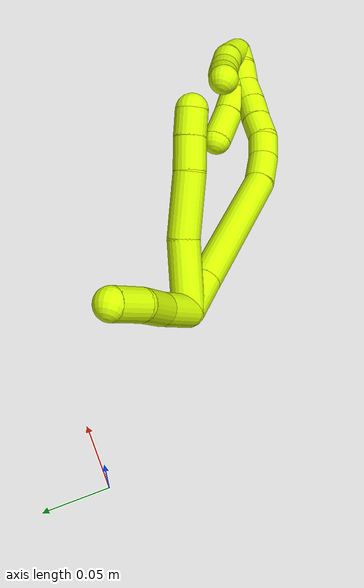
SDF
<sdf version="1.7">
 <world name="default">
  <model name="photoneo_s_sensor">
   <static>1</static>
   <pose>0 0 2 1.57079 1.57079 3.14159</pose>
   <link name="link">
    <inertial><mass>0.1</mass></inertial>
    <sensor name="sensor" type="depth">
     <update_rate>30</update_rate>
     <camera>
      <horizontal_fov>1.22</horizontal_fov>
      <image><width>1920</width><height>1200</height><format>B8G8R8</format></image>
      <clip><near>0.1</near><far>4</far></clip>
      <depth_camera><output>points</output></depth_camera>
     </camera>
     <plugin name="camera_plugin" filename="libgazebo_ros_depth_camera.so">
      <baseline>0.2</baseline>
      <alwaysOn>1</alwaysOn>
      <updateRate>0.0</updateRate>
      <cameraName>camera_ir</cameraName>
      <imageTopicName>/camera/color/image_raw</imageTopicName>
      <cameraInfoTopicName>/camera/color/camera_info</cameraInfoTopicName>
      <depthImageTopicName>/camera/depth/image_raw</depthImageTopicName>
      <depthImageCameraInfoTopicName>/camera/depth/camera_info</depthImageCameraInfoTopicName>
      <pointCloudTopicName>/camera/depth/points</pointCloudTopicName>
      <frameName>fr_optical</frameName>
      <pointCloudCutoff>0.1</pointCloudCutoff>
      <pointCloudCutoffMax>2.0</pointCloudCutoffMax>
      <distortionK1>0</distortionK1>
      <distortionK2>0</distortionK2>
      <distortionK3>0</distortionK3>
      <distortionT1>0</distortionT1>
      <distortionT2>0</distortionT2>
      <CxPrime>0</CxPrime>
      <Cx>0</Cx>
      <Cy>0</Cy>
      <focalLength>0</focalLength>
      <hackBaseline>0</hackBaseline>
     </plugin>
    </sensor>
   </link>
  </model>
  <model name="bin">
   <static>1</static>
   <link name="bottom">
    <collision name="collision-bottom">
     <pose>0 0 -0.01 0 -0 0</pose>
     <geometry><box><size>0.8 0.6 0.02</size></box></geometry>
     <surface>
      <friction><ode><mu>100</mu><mu2>100</mu2></ode></friction>
      <contact><collide_bitmask>65535</collide_bitmask></contact>
     </surface>
    </collision>
   </link>
   <link name="west_wall">
    <collision name="collision-west_wall">
     <pose>-0.41 0 0.1 0 -0 0</pose>
     <geometry><box><size>0.02 0.6 0.2</size></box></geometry>
     <surface>
      <friction><ode><mu>100</mu><mu2>100</mu2></ode></friction>
      <contact><collide_bitmask>65535</collide_bitmask></contact>
     </surface>
    </collision>
   </link>
   <link name="east_wall">
    <collision name="collision-east_wall">
     <pose>0.41 0 0.1 0 -0 0</pose>
     <geometry><box><size>0.02 0.6 0.2</size></box></geometry>
     <surface>
      <friction><ode><mu>100</mu><mu2>100</mu2></ode></friction>
      <contact><collide_bitmask>65535</collide_bitmask></contact>
     </surface>
    </collision>
   </link>
   <link name="south_wall">
    <collision name="collision-south_wall">
     <pose>0 -0.31 0.1 0 -0 0</pose>
     <geometry><box><size>0.8 0.02 0.2</size></box></geometry>
     <surface>
      <friction><ode><mu>100</mu><mu2>100</mu2></ode></friction>
      <contact><collide_bitmask>65535</collide_bitmask></contact>
     </surface>
    </collision>
   </link>
   <link name="north_wall">
    <collision name="collision-north_wall">
     <pose>0 0.31 0.1 0 -0 0</pose>
     <geometry><box><size>0.8 0.02 0.2</size></box></geometry>
     <surface>
      <friction><ode><mu>100</mu><mu2>100</mu2></ode></friction>
      <contact><collide_bitmask>65535</collide_bitmask></contact>
     </surface>
    </collision>
   </link>
  </model>
  <model name="15">
   <static>0</static>
   <link name="15">
    <collision name="collision-cylinder-e_1_2_8">
     <pose>-0.008241 0.010991 0.022866 -0.448081 -0.314086 0.072132</pose>
     <geometry><cylinder><radius>0.0125</radius><length>0.053351</length></cylinder></geometry>
     <surface>
      <friction><ode><mu>1.16</mu><mu2>1.16</mu2><slip1>0</slip1><slip2>0</slip2></ode></friction>
      <contact><ode><kp>1e+06</kp><kd>1</kd><max_vel>0</max_vel><min_depth>0.001</min_depth></ode></contact>
     </surface>
    </collision>
    <visual name="visual-cylinder-e_1_2_8">
     <pose>-0.008241 0.010991 0.022866 -0.448081 -0.314086 0.072132</pose>
     <geometry><cylinder><radius>0.0125</radius><length>0.053351</length></cylinder></geometry>
     <material><ambient>0.835294 1 0 1</ambient></material>
    </visual>
    <collision name="collision-cylinder-e_2_8_9">
     <pose>-0.026386 0.028976 0.067636 -0.309021 -0.406699 0.06421</pose>
     <geometry><cylinder><radius>0.0125</radius><length>0.050071</length></cylinder></geometry>
     <surface>
      <friction><ode><mu>1.16</mu><mu2>1.16</mu2><slip1>0</slip1><slip2>0</slip2></ode></friction>
      <contact><ode><kp>1e+06</kp><kd>1</kd><max_vel>0</max_vel><min_depth>0.001</min_depth></ode></contact>
     </surface>
    </collision>
    <visual name="visual-cylinder-e_2_8_9">
     <pose>-0.026386 0.028976 0.067636 -0.309021 -0.406699 0.06421</pose>
     <geometry><cylinder><radius>0.0125</radius><length>0.050071</length></cylinder></geometry>
     <material><ambient>0.835294 1 0 1</ambient></material>
    </visual>
    <collision name="collision-cylinder-e_3_9_10">
     <pose>-0.039952 0.040255 0.10112 -0.354496 -0.28836 0.052003</pose>
     <geometry><cylinder><radius>0.0125</radius><length>0.02576</length></cylinder></geometry>
     <surface>
      <friction><ode><mu>1.16</mu><mu2>1.16</mu2><slip1>0</slip1><slip2>0</slip2></ode></friction>
      <contact><ode><kp>1e+06</kp><kd>1</kd><max_vel>0</max_vel><min_depth>0.001</min_depth></ode></contact>
     </surface>
    </collision>
    <visual name="visual-cylinder-e_3_9_10">
     <pose>-0.039952 0.040255 0.10112 -0.354496 -0.28836 0.052003</pose>
     <geometry><cylinder><radius>0.0125</radius><length>0.02576</length></cylinder></geometry>
     <material><ambient>0.835294 1 0 1</ambient></material>
    </visual>
    <collision name="collision-cylinder-e_4_10_6">
     <pose>-0.046738 0.047429 0.122201 -0.295063 -0.304682 0.045625</pose>
     <geometry><cylinder><radius>0.0125</radius><length>0.020819</length></cylinder></geometry>
     <surface>
      <friction><ode><mu>1.16</mu><mu2>1.16</mu2><slip1>0</slip1><slip2>0</slip2></ode></friction>
      <contact><ode><kp>1e+06</kp><kd>1</kd><max_vel>0</max_vel><min_depth>0.001</min_depth></ode></contact>
     </surface>
    </collision>
    <visual name="visual-cylinder-e_4_10_6">
     <pose>-0.046738 0.047429 0.122201 -0.295063 -0.304682 0.045625</pose>
     <geometry><cylinder><radius>0.0125</radius><length>0.020819</length></cylinder></geometry>
     <material><ambient>0.835294 1 0 1</ambient></material>
    </visual>
    <collision name="collision-cylinder-e_1_2_11">
     <pose>-0.010349 0.012604 -0.007234 -2.09183 -0.618815 1.00884</pose>
     <geometry><cylinder><radius>0.0125</radius><length>0.035681</length></cylinder></geometry>
     <surface>
      <friction><ode><mu>1.16</mu><mu2>1.16</mu2><slip1>0</slip1><slip2>0</slip2></ode></friction>
      <contact><ode><kp>1e+06</kp><kd>1</kd><max_vel>0</max_vel><min_depth>0.001</min_depth></ode></contact>
     </surface>
    </collision>
    <visual name="visual-cylinder-e_1_2_11">
     <pose>-0.010349 0.012604 -0.007234 -2.09183 -0.618815 1.00884</pose>
     <geometry><cylinder><radius>0.0125</radius><length>0.035681</length></cylinder></geometry>
     <material><ambient>0.835294 1 0 1</ambient></material>
    </visual>
    <collision name="collision-cylinder-e_2_11_12">
     <pose>-0.033357 0.035543 -0.020715 -2.11451 -0.808969 1.29847</pose>
     <geometry><cylinder><radius>0.0125</radius><length>0.034991</length></cylinder></geometry>
     <surface>
      <friction><ode><mu>1.16</mu><mu2>1.16</mu2><slip1>0</slip1><slip2>0</slip2></ode></friction>
      <contact><ode><kp>1e+06</kp><kd>1</kd><max_vel>0</max_vel><min_depth>0.001</min_depth></ode></contact>
     </surface>
    </collision>
    <visual name="visual-cylinder-e_2_11_12">
     <pose>-0.033357 0.035543 -0.020715 -2.11451 -0.808969 1.29847</pose>
     <geometry><cylinder><radius>0.0125</radius><length>0.034991</length></cylinder></geometry>
     <material><ambient>0.835294 1 0 1</ambient></material>
    </visual>
    <collision name="collision-cylinder-e_3_12_5">
     <pose>-0.052771 0.05735 -0.03311 -2.06272 -0.478718 0.774144</pose>
     <geometry><cylinder><radius>0.0125</radius><length>0.029328</length></cylinder></geometry>
     <surface>
      <friction><ode><mu>1.16</mu><mu2>1.16</mu2><slip1>0</slip1><slip2>0</slip2></ode></friction>
      <contact><ode><kp>1e+06</kp><kd>1</kd><max_vel>0</max_vel><min_depth>0.001</min_depth></ode></contact>
     </surface>
    </collision>
    <visual name="visual-cylinder-e_3_12_5">
     <pose>-0.052771 0.05735 -0.03311 -2.06272 -0.478718 0.774144</pose>
     <geometry><cylinder><radius>0.0125</radius><length>0.029328</length></cylinder></geometry>
     <material><ambient>0.835294 1 0 1</ambient></material>
    </visual>
    <collision name="collision-cylinder-e_1_2_13">
     <pose>0.00358 -0.004293 0.015529 0.269724 0.218636 0.029782</pose>
     <geometry><cylinder><radius>0.0125</radius><length>0.033009</length></cylinder></geometry>
     <surface>
      <friction><ode><mu>1.16</mu><mu2>1.16</mu2><slip1>0</slip1><slip2>0</slip2></ode></friction>
      <contact><ode><kp>1e+06</kp><kd>1</kd><max_vel>0</max_vel><min_depth>0.001</min_depth></ode></contact>
     </surface>
    </collision>
    <visual name="visual-cylinder-e_1_2_13">
     <pose>0.00358 -0.004293 0.015529 0.269724 0.218636 0.029782</pose>
     <geometry><cylinder><radius>0.0125</radius><length>0.033009</length></cylinder></geometry>
     <material><ambient>0.835294 1 0 1</ambient></material>
    </visual>
    <collision name="collision-cylinder-e_2_13_14">
     <pose>0.018594 -0.024327 0.087195 0.273373 0.193662 0.026719</pose>
     <geometry><cylinder><radius>0.0125</radius><length>0.118824</length></cylinder></geometry>
     <surface>
      <friction><ode><mu>1.16</mu><mu2>1.16</mu2><slip1>0</slip1><slip2>0</slip2></ode></friction>
      <contact><ode><kp>1e+06</kp><kd>1</kd><max_vel>0</max_vel><min_depth>0.001</min_depth></ode></contact>
     </surface>
    </collision>
    <visual name="visual-cylinder-e_2_13_14">
     <pose>0.018594 -0.024327 0.087195 0.273373 0.193662 0.026719</pose>
     <geometry><cylinder><radius>0.0125</radius><length>0.118824</length></cylinder></geometry>
     <material><ambient>0.835294 1 0 1</ambient></material>
    </visual>
    <collision name="collision-cylinder-e_3_14_15">
     <pose>0.032879 -0.040221 0.157082 0.01122 0.204436 0.001151</pose>
     <geometry><cylinder><radius>0.0125</radius><length>0.028089</length></cylinder></geometry>
     <surface>
      <friction><ode><mu>1.16</mu><mu2>1.16</mu2><slip1>0</slip1><slip2>0</slip2></ode></friction>
      <contact><ode><kp>1e+06</kp><kd>1</kd><max_vel>0</max_vel><min_depth>0.001</min_depth></ode></contact>
     </surface>
    </collision>
    <visual name="visual-cylinder-e_3_14_15">
     <pose>0.032879 -0.040221 0.157082 0.01122 0.204436 0.001151</pose>
     <geometry><cylinder><radius>0.0125</radius><length>0.028089</length></cylinder></geometry>
     <material><ambient>0.835294 1 0 1</ambient></material>
    </visual>
    <collision name="collision-cylinder-e_4_15_16">
     <pose>0.035614 -0.038026 0.180584 -0.236492 -0.011624 0.001381</pose>
     <geometry><cylinder><radius>0.0125</radius><length>0.020061</length></cylinder></geometry>
     <surface>
      <friction><ode><mu>1.16</mu><mu2>1.16</mu2><slip1>0</slip1><slip2>0</slip2></ode></friction>
      <contact><ode><kp>1e+06</kp><kd>1</kd><max_vel>0</max_vel><min_depth>0.001</min_depth></ode></contact>
     </surface>
    </collision>
    <visual name="visual-cylinder-e_4_15_16">
     <pose>0.035614 -0.038026 0.180584 -0.236492 -0.011624 0.001381</pose>
     <geometry><cylinder><radius>0.0125</radius><length>0.020061</length></cylinder></geometry>
     <material><ambient>0.835294 1 0 1</ambient></material>
    </visual>
    <collision name="collision-cylinder-e_5_16_17">
     <pose>0.037914 -0.031515 0.199102 -0.443098 0.244116 -0.055247</pose>
     <geometry><cylinder><radius>0.0125</radius><length>0.020002</length></cylinder></geometry>
     <surface>
      <friction><ode><mu>1.16</mu><mu2>1.16</mu2><slip1>0</slip1><slip2>0</slip2></ode></friction>
      <contact><ode><kp>1e+06</kp><kd>1</kd><max_vel>0</max_vel><min_depth>0.001</min_depth></ode></contact>
     </surface>
    </collision>
    <visual name="visual-cylinder-e_5_16_17">
     <pose>0.037914 -0.031515 0.199102 -0.443098 0.244116 -0.055247</pose>
     <geometry><cylinder><radius>0.0125</radius><length>0.020002</length></cylinder></geometry>
     <material><ambient>0.835294 1 0 1</ambient></material>
    </visual>
    <collision name="collision-cylinder-e_6_17_18">
     <pose>0.042967 -0.023987 0.216916 -0.356314 0.26648 -0.048261</pose>
     <geometry><cylinder><radius>0.0125</radius><length>0.020011</length></cylinder></geometry>
     <surface>
      <friction><ode><mu>1.16</mu><mu2>1.16</mu2><slip1>0</slip1><slip2>0</slip2></ode></friction>
      <contact><ode><kp>1e+06</kp><kd>1</kd><max_vel>0</max_vel><min_depth>0.001</min_depth></ode></contact>
     </surface>
    </collision>
    <visual name="visual-cylinder-e_6_17_18">
     <pose>0.042967 -0.023987 0.216916 -0.356314 0.26648 -0.048261</pose>
     <geometry><cylinder><radius>0.0125</radius><length>0.020011</length></cylinder></geometry>
     <material><ambient>0.835294 1 0 1</ambient></material>
    </visual>
    <collision name="collision-cylinder-e_7_18_19">
     <pose>0.047708 -0.016164 0.234665 -0.473233 0.212214 -0.051354</pose>
     <geometry><cylinder><radius>0.0125</radius><length>0.020003</length></cylinder></geometry>
     <surface>
      <friction><ode><mu>1.16</mu><mu2>1.16</mu2><slip1>0</slip1><slip2>0</slip2></ode></friction>
      <contact><ode><kp>1e+06</kp><kd>1</kd><max_vel>0</max_vel><min_depth>0.001</min_depth></ode></contact>
     </surface>
    </collision>
    <visual name="visual-cylinder-e_7_18_19">
     <pose>0.047708 -0.016164 0.234665 -0.473233 0.212214 -0.051354</pose>
     <geometry><cylinder><radius>0.0125</radius><length>0.020003</length></cylinder></geometry>
     <material><ambient>0.835294 1 0 1</ambient></material>
    </visual>
    <collision name="collision-cylinder-e_8_19_20">
     <pose>0.050715 -0.00834 0.25274 -0.344959 0.0902 -0.015724</pose>
     <geometry><cylinder><radius>0.0125</radius><length>0.02</length></cylinder></geometry>
     <surface>
      <friction><ode><mu>1.16</mu><mu2>1.16</mu2><slip1>0</slip1><slip2>0</slip2></ode></friction>
      <contact><ode><kp>1e+06</kp><kd>1</kd><max_vel>0</max_vel><min_depth>0.001</min_depth></ode></contact>
     </surface>
    </collision>
    <visual name="visual-cylinder-e_8_19_20">
     <pose>0.050715 -0.00834 0.25274 -0.344959 0.0902 -0.015724</pose>
     <geometry><cylinder><radius>0.0125</radius><length>0.02</length></cylinder></geometry>
     <material><ambient>0.835294 1 0 1</ambient></material>
    </visual>
    <collision name="collision-cylinder-e_9_20_1">
     <pose>0.054775 -0.00208 0.271149 -0.309818 0.321417 -0.050618</pose>
     <geometry><cylinder><radius>0.0125</radius><length>0.02</length></cylinder></geometry>
     <surface>
      <friction><ode><mu>1.16</mu><mu2>1.16</mu2><slip1>0</slip1><slip2>0</slip2></ode></friction>
      <contact><ode><kp>1e+06</kp><kd>1</kd><max_vel>0</max_vel><min_depth>0.001</min_depth></ode></contact>
     </surface>
    </collision>
    <visual name="visual-cylinder-e_9_20_1">
     <pose>0.054775 -0.00208 0.271149 -0.309818 0.321417 -0.050618</pose>
     <geometry><cylinder><radius>0.0125</radius><length>0.02</length></cylinder></geometry>
     <material><ambient>0.835294 1 0 1</ambient></material>
    </visual>
    <collision name="collision-cylinder-e_1_1_21">
     <pose>0.047867 0.006877 0.267368 -2.6997 -0.617441 1.91438</pose>
     <geometry><cylinder><radius>0.0125</radius><length>0.034779</length></cylinder></geometry>
     <surface>
      <friction><ode><mu>1.16</mu><mu2>1.16</mu2><slip1>0</slip1><slip2>0</slip2></ode></friction>
      <contact><ode><kp>1e+06</kp><kd>1</kd><max_vel>0</max_vel><min_depth>0.001</min_depth></ode></contact>
     </surface>
    </collision>
    <visual name="visual-cylinder-e_1_1_21">
     <pose>0.047867 0.006877 0.267368 -2.6997 -0.617441 1.91438</pose>
     <geometry><cylinder><radius>0.0125</radius><length>0.034779</length></cylinder></geometry>
     <material><ambient>0.835294 1 0 1</ambient></material>
    </visual>
    <collision name="collision-cylinder-e_2_21_22">
     <pose>0.033075 0.014241 0.245579 -2.99767 -0.480328 2.56903</pose>
     <geometry><cylinder><radius>0.0125</radius><length>0.020447</length></cylinder></geometry>
     <surface>
      <friction><ode><mu>1.16</mu><mu2>1.16</mu2><slip1>0</slip1><slip2>0</slip2></ode></friction>
      <contact><ode><kp>1e+06</kp><kd>1</kd><max_vel>0</max_vel><min_depth>0.001</min_depth></ode></contact>
     </surface>
    </collision>
    <visual name="visual-cylinder-e_2_21_22">
     <pose>0.033075 0.014241 0.245579 -2.99767 -0.480328 2.56903</pose>
     <geometry><cylinder><radius>0.0125</radius><length>0.020447</length></cylinder></geometry>
     <material><ambient>0.835294 1 0 1</ambient></material>
    </visual>
    <collision name="collision-cylinder-e_3_22_23">
     <pose>0.021314 0.017144 0.227975 -2.95791 -0.675731 2.62885</pose>
     <geometry><cylinder><radius>0.0125</radius><length>0.0225</length></cylinder></geometry>
     <surface>
      <friction><ode><mu>1.16</mu><mu2>1.16</mu2><slip1>0</slip1><slip2>0</slip2></ode></friction>
      <contact><ode><kp>1e+06</kp><kd>1</kd><max_vel>0</max_vel><min_depth>0.001</min_depth></ode></contact>
     </surface>
    </collision>
    <visual name="visual-cylinder-e_3_22_23">
     <pose>0.021314 0.017144 0.227975 -2.95791 -0.675731 2.62885</pose>
     <geometry><cylinder><radius>0.0125</radius><length>0.0225</length></cylinder></geometry>
     <material><ambient>0.835294 1 0 1</ambient></material>
    </visual>
    <collision name="collision-cylinder-e_4_23_4">
     <pose>0.006509 0.019769 0.211431 -3.01331 -0.772057 2.82811</pose>
     <geometry><cylinder><radius>0.0125</radius><length>0.022273</length></cylinder></geometry>
     <surface>
      <friction><ode><mu>1.16</mu><mu2>1.16</mu2><slip1>0</slip1><slip2>0</slip2></ode></friction>
      <contact><ode><kp>1e+06</kp><kd>1</kd><max_vel>0</max_vel><min_depth>0.001</min_depth></ode></contact>
     </surface>
    </collision>
    <visual name="visual-cylinder-e_4_23_4">
     <pose>0.006509 0.019769 0.211431 -3.01331 -0.772057 2.82811</pose>
     <geometry><cylinder><radius>0.0125</radius><length>0.022273</length></cylinder></geometry>
     <material><ambient>0.835294 1 0 1</ambient></material>
    </visual>
    <collision name="collision-cylinder-e_1_1_24">
     <pose>0.056847 -0.000971 0.270323 2.96262 -0.108044 -1.08474</pose>
     <geometry><cylinder><radius>0.0125</radius><length>0.020162</length></cylinder></geometry>
     <surface>
      <friction><ode><mu>1.16</mu><mu2>1.16</mu2><slip1>0</slip1><slip2>0</slip2></ode></friction>
      <contact><ode><kp>1e+06</kp><kd>1</kd><max_vel>0</max_vel><min_depth>0.001</min_depth></ode></contact>
     </surface>
    </collision>
    <visual name="visual-cylinder-e_1_1_24">
     <pose>0.056847 -0.000971 0.270323 2.96262 -0.108044 -1.08474</pose>
     <geometry><cylinder><radius>0.0125</radius><length>0.020162</length></cylinder></geometry>
     <material><ambient>0.835294 1 0 1</ambient></material>
    </visual>
    <collision name="collision-cylinder-e_2_24_25">
     <pose>0.054119 -0.004246 0.247369 3.02824 -0.123916 -1.66</pose>
     <geometry><cylinder><radius>0.0125</radius><length>0.026556</length></cylinder></geometry>
     <surface>
      <friction><ode><mu>1.16</mu><mu2>1.16</mu2><slip1>0</slip1><slip2>0</slip2></ode></friction>
      <contact><ode><kp>1e+06</kp><kd>1</kd><max_vel>0</max_vel><min_depth>0.001</min_depth></ode></contact>
     </surface>
    </collision>
    <visual name="visual-cylinder-e_2_24_25">
     <pose>0.054119 -0.004246 0.247369 3.02824 -0.123916 -1.66</pose>
     <geometry><cylinder><radius>0.0125</radius><length>0.026556</length></cylinder></geometry>
     <material><ambient>0.835294 1 0 1</ambient></material>
    </visual>
    <collision name="collision-cylinder-e_3_25_26">
     <pose>0.052556 -0.005129 0.222562 -3.08985 0.006643 -0.255312</pose>
     <geometry><cylinder><radius>0.0125</radius><length>0.023463</length></cylinder></geometry>
     <surface>
      <friction><ode><mu>1.16</mu><mu2>1.16</mu2><slip1>0</slip1><slip2>0</slip2></ode></friction>
      <contact><ode><kp>1e+06</kp><kd>1</kd><max_vel>0</max_vel><min_depth>0.001</min_depth></ode></contact>
     </surface>
    </collision>
    <visual name="visual-cylinder-e_3_25_26">
     <pose>0.052556 -0.005129 0.222562 -3.08985 0.006643 -0.255312</pose>
     <geometry><cylinder><radius>0.0125</radius><length>0.023463</length></cylinder></geometry>
     <material><ambient>0.835294 1 0 1</ambient></material>
    </visual>
    <collision name="collision-cylinder-e_4_26_3">
     <pose>0.052916 -0.002743 0.196046 -3.02193 0.018937 -0.31354</pose>
     <geometry><cylinder><radius>0.0125</radius><length>0.029819</length></cylinder></geometry>
     <surface>
      <friction><ode><mu>1.16</mu><mu2>1.16</mu2><slip1>0</slip1><slip2>0</slip2></ode></friction>
      <contact><ode><kp>1e+06</kp><kd>1</kd><max_vel>0</max_vel><min_depth>0.001</min_depth></ode></contact>
     </surface>
    </collision>
    <visual name="visual-cylinder-e_4_26_3">
     <pose>0.052916 -0.002743 0.196046 -3.02193 0.018937 -0.31354</pose>
     <geometry><cylinder><radius>0.0125</radius><length>0.029819</length></cylinder></geometry>
     <material><ambient>0.835294 1 0 1</ambient></material>
    </visual>
    <collision name="collision-sphere-3">
     <pose>0.053198 -0.000963 0.181246 0 -0 0</pose>
     <geometry><sphere><radius>0.0125</radius></sphere></geometry>
     <surface>
      <friction><ode><mu>1.16</mu><mu2>1.16</mu2><slip1>0</slip1><slip2>0</slip2></ode></friction>
      <contact><ode><kp>1e+06</kp><kd>1</kd><max_vel>0</max_vel><min_depth>0.001</min_depth></ode></contact>
     </surface>
    </collision>
    <visual name="visual-sphere-3">
     <pose>0.053198 -0.000963 0.181246 0 -0 0</pose>
     <geometry><sphere><radius>0.0125</radius></sphere></geometry>
     <material><ambient>0.835294 1 0 1</ambient></material>
    </visual>
    <collision name="collision-sphere-26">
     <pose>0.052634 -0.004522 0.210846 0 -0 0</pose>
     <geometry><sphere><radius>0.0125</radius></sphere></geometry>
     <surface>
      <friction><ode><mu>1.16</mu><mu2>1.16</mu2><slip1>0</slip1><slip2>0</slip2></ode></friction>
      <contact><ode><kp>1e+06</kp><kd>1</kd><max_vel>0</max_vel><min_depth>0.001</min_depth></ode></contact>
     </surface>
    </collision>
    <visual name="visual-sphere-26">
     <pose>0.052634 -0.004522 0.210846 0 -0 0</pose>
     <geometry><sphere><radius>0.0125</radius></sphere></geometry>
     <material><ambient>0.835294 1 0 1</ambient></material>
    </visual>
    <collision name="collision-sphere-25">
     <pose>0.052478 -0.005736 0.234278 0 -0 0</pose>
     <geometry><sphere><radius>0.0125</radius></sphere></geometry>
     <surface>
      <friction><ode><mu>1.16</mu><mu2>1.16</mu2><slip1>0</slip1><slip2>0</slip2></ode></friction>
      <contact><ode><kp>1e+06</kp><kd>1</kd><max_vel>0</max_vel><min_depth>0.001</min_depth></ode></contact>
     </surface>
    </collision>
    <visual name="visual-sphere-25">
     <pose>0.052478 -0.005736 0.234278 0 -0 0</pose>
     <geometry><sphere><radius>0.0125</radius></sphere></geometry>
     <material><ambient>0.835294 1 0 1</ambient></material>
    </visual>
    <collision name="collision-sphere-24">
     <pose>0.05576 -0.002755 0.260461 0 -0 0</pose>
     <geometry><sphere><radius>0.0125</radius></sphere></geometry>
     <surface>
      <friction><ode><mu>1.16</mu><mu2>1.16</mu2><slip1>0</slip1><slip2>0</slip2></ode></friction>
      <contact><ode><kp>1e+06</kp><kd>1</kd><max_vel>0</max_vel><min_depth>0.001</min_depth></ode></contact>
     </surface>
    </collision>
    <visual name="visual-sphere-24">
     <pose>0.05576 -0.002755 0.260461 0 -0 0</pose>
     <geometry><sphere><radius>0.0125</radius></sphere></geometry>
     <material><ambient>0.835294 1 0 1</ambient></material>
    </visual>
    <collision name="collision-sphere-4">
     <pose>-0.001261 0.020789 0.203518 0 -0 0</pose>
     <geometry><sphere><radius>0.0125</radius></sphere></geometry>
     <surface>
      <friction><ode><mu>1.16</mu><mu2>1.16</mu2><slip1>0</slip1><slip2>0</slip2></ode></friction>
      <contact><ode><kp>1e+06</kp><kd>1</kd><max_vel>0</max_vel><min_depth>0.001</min_depth></ode></contact>
     </surface>
    </collision>
    <visual name="visual-sphere-4">
     <pose>-0.001261 0.020789 0.203518 0 -0 0</pose>
     <geometry><sphere><radius>0.0125</radius></sphere></geometry>
     <material><ambient>0.835294 1 0 1</ambient></material>
    </visual>
    <collision name="collision-sphere-23">
     <pose>0.014278 0.018748 0.219345 0 -0 0</pose>
     <geometry><sphere><radius>0.0125</radius></sphere></geometry>
     <surface>
      <friction><ode><mu>1.16</mu><mu2>1.16</mu2><slip1>0</slip1><slip2>0</slip2></ode></friction>
      <contact><ode><kp>1e+06</kp><kd>1</kd><max_vel>0</max_vel><min_depth>0.001</min_depth></ode></contact>
     </surface>
    </collision>
    <visual name="visual-sphere-23">
     <pose>0.014278 0.018748 0.219345 0 -0 0</pose>
     <geometry><sphere><radius>0.0125</radius></sphere></geometry>
     <material><ambient>0.835294 1 0 1</ambient></material>
    </visual>
    <collision name="collision-sphere-22">
     <pose>0.028351 0.015541 0.236606 0 -0 0</pose>
     <geometry><sphere><radius>0.0125</radius></sphere></geometry>
     <surface>
      <friction><ode><mu>1.16</mu><mu2>1.16</mu2><slip1>0</slip1><slip2>0</slip2></ode></friction>
      <contact><ode><kp>1e+06</kp><kd>1</kd><max_vel>0</max_vel><min_depth>0.001</min_depth></ode></contact>
     </surface>
    </collision>
    <visual name="visual-sphere-22">
     <pose>0.028351 0.015541 0.236606 0 -0 0</pose>
     <geometry><sphere><radius>0.0125</radius></sphere></geometry>
     <material><ambient>0.835294 1 0 1</ambient></material>
    </visual>
    <collision name="collision-sphere-21">
     <pose>0.037799 0.01294 0.254551 0 -0 0</pose>
     <geometry><sphere><radius>0.0125</radius></sphere></geometry>
     <surface>
      <friction><ode><mu>1.16</mu><mu2>1.16</mu2><slip1>0</slip1><slip2>0</slip2></ode></friction>
      <contact><ode><kp>1e+06</kp><kd>1</kd><max_vel>0</max_vel><min_depth>0.001</min_depth></ode></contact>
     </surface>
    </collision>
    <visual name="visual-sphere-21">
     <pose>0.037799 0.01294 0.254551 0 -0 0</pose>
     <geometry><sphere><radius>0.0125</radius></sphere></geometry>
     <material><ambient>0.835294 1 0 1</ambient></material>
    </visual>
    <collision name="collision-sphere-1">
     <pose>0.057934 0.000813 0.280185 0 -0 0</pose>
     <geometry><sphere><radius>0.0125</radius></sphere></geometry>
     <surface>
      <friction><ode><mu>1.16</mu><mu2>1.16</mu2><slip1>0</slip1><slip2>0</slip2></ode></friction>
      <contact><ode><kp>1e+06</kp><kd>1</kd><max_vel>0</max_vel><min_depth>0.001</min_depth></ode></contact>
     </surface>
    </collision>
    <visual name="visual-sphere-1">
     <pose>0.057934 0.000813 0.280185 0 -0 0</pose>
     <geometry><sphere><radius>0.0125</radius></sphere></geometry>
     <material><ambient>0.835294 1 0 1</ambient></material>
    </visual>
    <collision name="collision-sphere-11">
     <pose>-0.020698 0.025208 -0.014468 0 -0 0</pose>
     <geometry><sphere><radius>0.0125</radius></sphere></geometry>
     <surface>
      <friction><ode><mu>1.16</mu><mu2>1.16</mu2><slip1>0</slip1><slip2>0</slip2></ode></friction>
      <contact><ode><kp>1e+06</kp><kd>1</kd><max_vel>0</max_vel><min_depth>0.001</min_depth></ode></contact>
     </surface>
    </collision>
    <visual name="visual-sphere-11">
     <pose>-0.020698 0.025208 -0.014468 0 -0 0</pose>
     <geometry><sphere><radius>0.0125</radius></sphere></geometry>
     <material><ambient>0.835294 1 0 1</ambient></material>
    </visual>
    <collision name="collision-sphere-6">
     <pose>-0.049861 0.050316 0.131702 0 -0 0</pose>
     <geometry><sphere><radius>0.0125</radius></sphere></geometry>
     <surface>
      <friction><ode><mu>1.16</mu><mu2>1.16</mu2><slip1>0</slip1><slip2>0</slip2></ode></friction>
      <contact><ode><kp>1e+06</kp><kd>1</kd><max_vel>0</max_vel><min_depth>0.001</min_depth></ode></contact>
     </surface>
    </collision>
    <visual name="visual-sphere-6">
     <pose>-0.049861 0.050316 0.131702 0 -0 0</pose>
     <geometry><sphere><radius>0.0125</radius></sphere></geometry>
     <material><ambient>0.835294 1 0 1</ambient></material>
    </visual>
    <collision name="collision-sphere-10">
     <pose>-0.043615 0.044541 0.1127 0 -0 0</pose>
     <geometry><sphere><radius>0.0125</radius></sphere></geometry>
     <surface>
      <friction><ode><mu>1.16</mu><mu2>1.16</mu2><slip1>0</slip1><slip2>0</slip2></ode></friction>
      <contact><ode><kp>1e+06</kp><kd>1</kd><max_vel>0</max_vel><min_depth>0.001</min_depth></ode></contact>
     </surface>
    </collision>
    <visual name="visual-sphere-10">
     <pose>-0.043615 0.044541 0.1127 0 -0 0</pose>
     <geometry><sphere><radius>0.0125</radius></sphere></geometry>
     <material><ambient>0.835294 1 0 1</ambient></material>
    </visual>
    <collision name="collision-sphere-9">
     <pose>-0.03629 0.035969 0.08954 0 -0 0</pose>
     <geometry><sphere><radius>0.0125</radius></sphere></geometry>
     <surface>
      <friction><ode><mu>1.16</mu><mu2>1.16</mu2><slip1>0</slip1><slip2>0</slip2></ode></friction>
      <contact><ode><kp>1e+06</kp><kd>1</kd><max_vel>0</max_vel><min_depth>0.001</min_depth></ode></contact>
     </surface>
    </collision>
    <visual name="visual-sphere-9">
     <pose>-0.03629 0.035969 0.08954 0 -0 0</pose>
     <geometry><sphere><radius>0.0125</radius></sphere></geometry>
     <material><ambient>0.835294 1 0 1</ambient></material>
    </visual>
    <collision name="collision-sphere-2">
     <geometry><sphere><radius>0.0125</radius></sphere></geometry>
     <surface>
      <friction><ode><mu>1.16</mu><mu2>1.16</mu2><slip1>0</slip1><slip2>0</slip2></ode></friction>
      <contact><ode><kp>1e+06</kp><kd>1</kd><max_vel>0</max_vel><min_depth>0.001</min_depth></ode></contact>
     </surface>
    </collision>
    <visual name="visual-sphere-2">
     <geometry><sphere><radius>0.0125</radius></sphere></geometry>
     <material><ambient>0.835294 1 0 1</ambient></material>
    </visual>
    <collision name="collision-sphere-19">
     <pose>0.049814 -0.011708 0.243367 0 -0 0</pose>
     <geometry><sphere><radius>0.0125</radius></sphere></geometry>
     <surface>
      <friction><ode><mu>1.16</mu><mu2>1.16</mu2><slip1>0</slip1><slip2>0</slip2></ode></friction>
      <contact><ode><kp>1e+06</kp><kd>1</kd><max_vel>0</max_vel><min_depth>0.001</min_depth></ode></contact>
     </surface>
    </collision>
    <visual name="visual-sphere-19">
     <pose>0.049814 -0.011708 0.243367 0 -0 0</pose>
     <geometry><sphere><radius>0.0125</radius></sphere></geometry>
     <material><ambient>0.835294 1 0 1</ambient></material>
    </visual>
    <collision name="collision-sphere-8">
     <pose>-0.016483 0.021983 0.045732 0 -0 0</pose>
     <geometry><sphere><radius>0.0125</radius></sphere></geometry>
     <surface>
      <friction><ode><mu>1.16</mu><mu2>1.16</mu2><slip1>0</slip1><slip2>0</slip2></ode></friction>
      <contact><ode><kp>1e+06</kp><kd>1</kd><max_vel>0</max_vel><min_depth>0.001</min_depth></ode></contact>
     </surface>
    </collision>
    <visual name="visual-sphere-8">
     <pose>-0.016483 0.021983 0.045732 0 -0 0</pose>
     <geometry><sphere><radius>0.0125</radius></sphere></geometry>
     <material><ambient>0.835294 1 0 1</ambient></material>
    </visual>
    <collision name="collision-sphere-12">
     <pose>-0.046016 0.045877 -0.026962 0 -0 0</pose>
     <geometry><sphere><radius>0.0125</radius></sphere></geometry>
     <surface>
      <friction><ode><mu>1.16</mu><mu2>1.16</mu2><slip1>0</slip1><slip2>0</slip2></ode></friction>
      <contact><ode><kp>1e+06</kp><kd>1</kd><max_vel>0</max_vel><min_depth>0.001</min_depth></ode></contact>
     </surface>
    </collision>
    <visual name="visual-sphere-12">
     <pose>-0.046016 0.045877 -0.026962 0 -0 0</pose>
     <geometry><sphere><radius>0.0125</radius></sphere></geometry>
     <material><ambient>0.835294 1 0 1</ambient></material>
    </visual>
    <collision name="collision-sphere-5">
     <pose>-0.059526 0.068822 -0.039257 0 -0 0</pose>
     <geometry><sphere><radius>0.0125</radius></sphere></geometry>
     <surface>
      <friction><ode><mu>1.16</mu><mu2>1.16</mu2><slip1>0</slip1><slip2>0</slip2></ode></friction>
      <contact><ode><kp>1e+06</kp><kd>1</kd><max_vel>0</max_vel><min_depth>0.001</min_depth></ode></contact>
     </surface>
    </collision>
    <visual name="visual-sphere-5">
     <pose>-0.059526 0.068822 -0.039257 0 -0 0</pose>
     <geometry><sphere><radius>0.0125</radius></sphere></geometry>
     <material><ambient>0.835294 1 0 1</ambient></material>
    </visual>
    <collision name="collision-sphere-13">
     <pose>0.00716 -0.008586 0.031058 0 -0 0</pose>
     <geometry><sphere><radius>0.0125</radius></sphere></geometry>
     <surface>
      <friction><ode><mu>1.16</mu><mu2>1.16</mu2><slip1>0</slip1><slip2>0</slip2></ode></friction>
      <contact><ode><kp>1e+06</kp><kd>1</kd><max_vel>0</max_vel><min_depth>0.001</min_depth></ode></contact>
     </surface>
    </collision>
    <visual name="visual-sphere-13">
     <pose>0.00716 -0.008586 0.031058 0 -0 0</pose>
     <geometry><sphere><radius>0.0125</radius></sphere></geometry>
     <material><ambient>0.835294 1 0 1</ambient></material>
    </visual>
    <collision name="collision-sphere-14">
     <pose>0.030028 -0.040067 0.143331 0 -0 0</pose>
     <geometry><sphere><radius>0.0125</radius></sphere></geometry>
     <surface>
      <friction><ode><mu>1.16</mu><mu2>1.16</mu2><slip1>0</slip1><slip2>0</slip2></ode></friction>
      <contact><ode><kp>1e+06</kp><kd>1</kd><max_vel>0</max_vel><min_depth>0.001</min_depth></ode></contact>
     </surface>
    </collision>
    <visual name="visual-sphere-14">
     <pose>0.030028 -0.040067 0.143331 0 -0 0</pose>
     <geometry><sphere><radius>0.0125</radius></sphere></geometry>
     <material><ambient>0.835294 1 0 1</ambient></material>
    </visual>
    <collision name="collision-sphere-15">
     <pose>0.03573 -0.040376 0.170834 0 -0 0</pose>
     <geometry><sphere><radius>0.0125</radius></sphere></geometry>
     <surface>
      <friction><ode><mu>1.16</mu><mu2>1.16</mu2><slip1>0</slip1><slip2>0</slip2></ode></friction>
      <contact><ode><kp>1e+06</kp><kd>1</kd><max_vel>0</max_vel><min_depth>0.001</min_depth></ode></contact>
     </surface>
    </collision>
    <visual name="visual-sphere-15">
     <pose>0.03573 -0.040376 0.170834 0 -0 0</pose>
     <geometry><sphere><radius>0.0125</radius></sphere></geometry>
     <material><ambient>0.835294 1 0 1</ambient></material>
    </visual>
    <collision name="collision-sphere-16">
     <pose>0.035497 -0.035676 0.190335 0 -0 0</pose>
     <geometry><sphere><radius>0.0125</radius></sphere></geometry>
     <surface>
      <friction><ode><mu>1.16</mu><mu2>1.16</mu2><slip1>0</slip1><slip2>0</slip2></ode></friction>
      <contact><ode><kp>1e+06</kp><kd>1</kd><max_vel>0</max_vel><min_depth>0.001</min_depth></ode></contact>
     </surface>
    </collision>
    <visual name="visual-sphere-16">
     <pose>0.035497 -0.035676 0.190335 0 -0 0</pose>
     <geometry><sphere><radius>0.0125</radius></sphere></geometry>
     <material><ambient>0.835294 1 0 1</ambient></material>
    </visual>
    <collision name="collision-sphere-17">
     <pose>0.040332 -0.027354 0.20787 0 -0 0</pose>
     <geometry><sphere><radius>0.0125</radius></sphere></geometry>
     <surface>
      <friction><ode><mu>1.16</mu><mu2>1.16</mu2><slip1>0</slip1><slip2>0</slip2></ode></friction>
      <contact><ode><kp>1e+06</kp><kd>1</kd><max_vel>0</max_vel><min_depth>0.001</min_depth></ode></contact>
     </surface>
    </collision>
    <visual name="visual-sphere-17">
     <pose>0.040332 -0.027354 0.20787 0 -0 0</pose>
     <geometry><sphere><radius>0.0125</radius></sphere></geometry>
     <material><ambient>0.835294 1 0 1</ambient></material>
    </visual>
    <collision name="collision-sphere-18">
     <pose>0.045601 -0.02062 0.225962 0 -0 0</pose>
     <geometry><sphere><radius>0.0125</radius></sphere></geometry>
     <surface>
      <friction><ode><mu>1.16</mu><mu2>1.16</mu2><slip1>0</slip1><slip2>0</slip2></ode></friction>
      <contact><ode><kp>1e+06</kp><kd>1</kd><max_vel>0</max_vel><min_depth>0.001</min_depth></ode></contact>
     </surface>
    </collision>
    <visual name="visual-sphere-18">
     <pose>0.045601 -0.02062 0.225962 0 -0 0</pose>
     <geometry><sphere><radius>0.0125</radius></sphere></geometry>
     <material><ambient>0.835294 1 0 1</ambient></material>
    </visual>
    <collision name="collision-sphere-20">
     <pose>0.051616 -0.004972 0.262113 0 -0 0</pose>
     <geometry><sphere><radius>0.0125</radius></sphere></geometry>
     <surface>
      <friction><ode><mu>1.16</mu><mu2>1.16</mu2><slip1>0</slip1><slip2>0</slip2></ode></friction>
      <contact><ode><kp>1e+06</kp><kd>1</kd><max_vel>0</max_vel><min_depth>0.001</min_depth></ode></contact>
     </surface>
    </collision>
    <visual name="visual-sphere-20">
     <pose>0.051616 -0.004972 0.262113 0 -0 0</pose>
     <geometry><sphere><radius>0.0125</radius></sphere></geometry>
     <material><ambient>0.835294 1 0 1</ambient></material>
    </visual>
    <inertial>
     <pose>0.013548 0.002522 0.129935 0 -0 0</pose>
     <mass>0.75</mass>
     <inertia>
      <ixx>0.000198</ixx>
      <ixy>0</ixy>
      <ixz>0</ixz>
      <iyy>0.000214</iyy>
      <iyz>0</iyz>
      <izz>2.4e-05</izz>
     </inertia>
    </inertial>
   </link>
   <pose>0.090332 -0.096253 0.045005 1.33205 1.17798 0.736505</pose>
  </model>
 </world>
</sdf>
